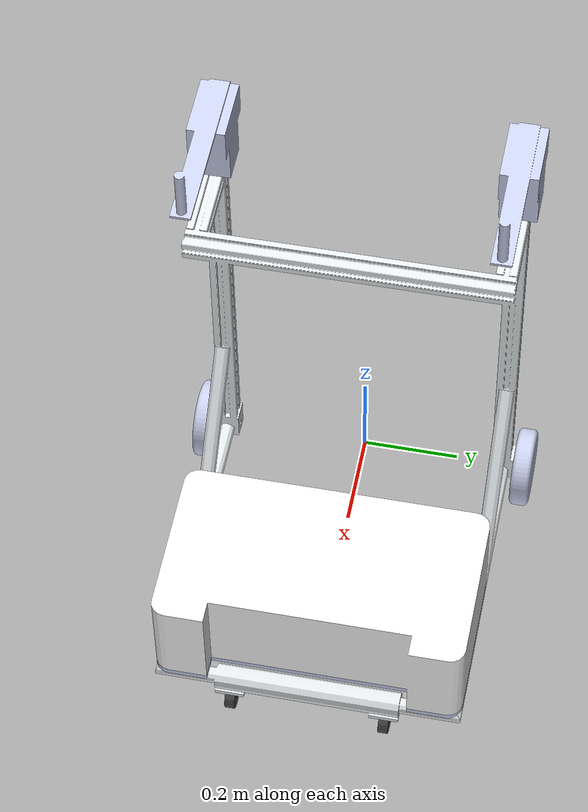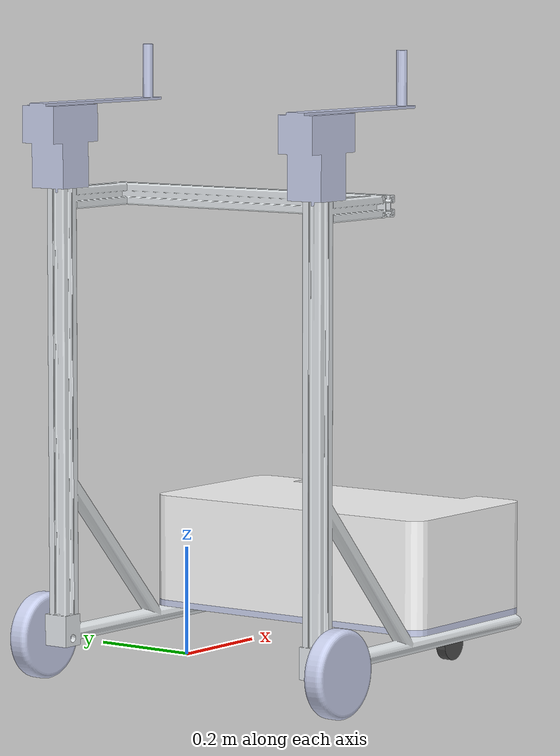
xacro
<?xml version="1.0"?>
<robot name="bmt_walker" xmlns:xacro="http://ros.org/wiki/xacro">

  <!--Properties-->
  <!--All units in m-kg-s-radians unit system -->
  <xacro:property name="M_PI" value="3.1415926535897931" />
  <xacro:property name="M_PI_2" value="1.570796327" />

  <!-- Robot's Base Size -->
  <xacro:property name="base_x_size" value="0.74" />
  <xacro:property name="base_y_size" value="0.66" />
	<xacro:property name="base_z_size" value="1.15" />

  <!-- Wheel Properties -->
  <xacro:property name="wheel_vertical_offset" value="0.015" />
  <xacro:property name="wheel_length" value="0.045" />
	<xacro:property name="wheel_radius" value="0.0825" />

	<!-- Caster wheel properties-->
	<xacro:property name="caster_length" value="0.020" />
	<xacro:property name="caster_radius" value="0.032" />
	<xacro:property name="caster_z_offset" value="-0.05325" />
	<xacro:property name="caster_y_offset" value="0.159" />
	<xacro:property name="caster_x_offset" value="0.6315" />
	<xacro:property name="caster_mass" value="0.5"/>

	<!-- base_footprint is a fictitious link(frame) that is on the ground right below base_link origin -->
	<link name="base_footprint" >
		<inertial>
			<mass value="0.0001" />
     	<origin xyz="0 0 0" />
     	<inertia ixx="0.0001" ixy="0.0" ixz="0.0" iyy="0.0001" iyz="0.0" izz="0.0001" />
    </inertial>
  </link>
	<joint name="base_footprint_joint" type="fixed">
		<origin xyz="0 0 ${wheel_vertical_offset - wheel_radius}" rpy="0 0 0" />
		<parent link="base_link" />
		<child link="base_footprint" />
	</joint>
	<gazebo reference="base_footprint">
    <turnGravityOff>false</turnGravityOff>
	</gazebo>

	<!-- Base link is the center of rotation of the robot -->
	<link name="base_link">
		<inertial>
      <origin xyz="0 0 0" rpy="0 0 0" />
      <mass value="23.3" />
      <inertia ixx="0.807" ixy="0" ixz="0" iyy="0.807" iyz="0" izz="0.807" />
    </inertial>
    <visual>
      <origin xyz="0 0 0" rpy="0 0 ${M_PI}" />
      <geometry>
        <mesh filename="package://bmt_sw_description/meshes/base_link_nowheels.STL" />
      </geometry>
      <material name="">
        <color rgba="0.898039215686275 0.917647058823529 0.929411764705882 1" />
      </material>
    </visual>
    <collision>
      <!--origin xyz="${base_x_size/2} 0 ${base_z_size/4}" rpy="0 0 0" /-->
	  <origin xyz="0 0 0" rpy="0 0 ${M_PI}" />
      <geometry>
        <mesh filename="package://bmt_sw_description/meshes/base_link_nowheels.STL" />
      </geometry>
    </collision>
  </link>
	<gazebo reference="base_link">
    <material>Gazebo/White</material>
    <turnGravityOff>false</turnGravityOff>
	</gazebo>

  <!--Left wheel-->
  <link name="left_wheel">
    <inertial>
      <origin xyz="0 0 0" rpy="0 0 0" />
      <mass value="2.4" />
      <inertia ixx="0.00952875" ixy="0" ixz="0" iyy="0.00952875" iyz="0" izz="0.0081675" />
    </inertial>
    <visual>
      <origin xyz="0 0 0" rpy="-${M_PI_2} ${M_PI_2} 0" />
      <geometry>
        <mesh filename="package://bmt_sw_description/meshes/left_wheel.STL" />
      </geometry>
      <material name="">
        <color rgba="0.792156862745098 0.819607843137255 0.933333333333333 1" />
      </material>
    </visual>
    <collision>
      <origin xyz="0 ${wheel_length+0.01} 0" rpy="-${M_PI_2} ${M_PI_2} 0" />
      <geometry>
        <!--mesh filename="package://bmt_sw_description/meshes/left_wheel.STL" /-->
				<cylinder length="${wheel_length}" radius="${wheel_radius}"/>
      </geometry>
    </collision>
  </link>
  <gazebo reference="left_wheel">
		<mu1 value="1.0"/>
		<mu2 value="1.0"/>
		<kp value="10000000.0" />
		<kd value="1.0" />
		<fdir1 value="1 0 0"/>
		<material>Gazebo/Grey</material>
		<turnGravityOff>false</turnGravityOff>
	</gazebo>
  <joint name="left_wheel_joint" type="continuous">
    <parent link="base_link" />
    <child link="left_wheel" />
    <origin xyz="0 0.285 0" rpy="0 0 0" />
    <axis xyz="0 1 0" />
    <limit effort="100" velocity="100"/>
    <joint_properties damping="0.0" friction="0.5"/>
  </joint>
	<transmission name="left_wheel_trans" type="SimpleTransmission">
			<type>transmission_interface/SimpleTransmission</type>
			<joint name="left_wheel_joint"/>
			<actuator name="left_wheel_motor">
				<hardwareInterface>EffortJointInterface</hardwareInterface>
				<mechanicalReduction>1</mechanicalReduction>
			</actuator>
	</transmission>

	<!--Right wheel-->
  <link name="right_wheel">
    <inertial>
      <origin xyz="0 0 0" rpy="0 0 0" />
      <mass value="2.4" />
      <inertia ixx="0.00952875" ixy="0" ixz="0" iyy="0.00952875" iyz="0" izz="0.0081675" />
    </inertial>
    <visual>
      <origin xyz="0 0 0" rpy="-${M_PI_2} ${M_PI_2} ${M_PI}" />
      <geometry>
        <mesh filename="package://bmt_sw_description/meshes/left_wheel.STL" />
      </geometry>
      <material name="">
        <color rgba="0.792156862745098 0.819607843137255 0.933333333333333 1" />
      </material>
    </visual>
    <collision>
      <origin xyz="0 -${wheel_length+0.01} 0" rpy="-${M_PI_2} ${M_PI_2} ${M_PI}" />
      <geometry>
        <!--mesh filename="package://bmt_sw_description/meshes/left_wheel.STL" /-->
				<cylinder length="${wheel_length}" radius="${wheel_radius}"/>
      </geometry>
    </collision>
  </link>
  <gazebo reference="right_wheel">
		<mu1 value="1.0"/>
		<mu2 value="1.0"/>
		<kp value="10000000.0" />
		<kd value="1.0" />
		<fdir1 value="1 0 0"/>
		<material>Gazebo/Grey</material>
		<turnGravityOff>false</turnGravityOff>
	</gazebo>
  <joint name="right_wheel_joint" type="continuous">
    <parent link="base_link" />
    <child link="right_wheel" />
    <origin xyz="0 -0.285 0" rpy="0 0 0" />
    <axis xyz="0 1 0" />
    <limit effort="100" velocity="100"/>
    <joint_properties damping="0.0" friction="0.5"/>
  </joint>
	<transmission name="right_wheel_trans" type="SimpleTransmission">
			<type>transmission_interface/SimpleTransmission</type>
			<joint name="right_wheel_joint"/>
			<actuator name="right_wheel_motor">
				<hardwareInterface>EffortJointInterface</hardwareInterface>
				<mechanicalReduction>1</mechanicalReduction>
			</actuator>
	</transmission>

	<!--Left caster wheel-->
	<link name="left_caster">
		<inertial>
		  	<mass value="${caster_mass}" />
		    <origin xyz="0 0 0" />
		    <inertia ixx="0.001" ixy="0.0" ixz="0.0" iyy="0.001" iyz="0.0" izz="0.001" />
    	</inertial>
		<visual>
			<origin xyz="0 0 0" rpy="${M_PI_2} 0 0" />
      <geometry>
				<cylinder length="${caster_length}" radius="${caster_radius}" />
      </geometry>
      <material name="DarkGray" />
    </visual>
    <collision>
			<origin xyz="0 0 0" rpy="${M_PI_2} 0 0" />
    	<geometry>
				<cylinder length="${caster_length}" radius="${caster_radius}" />
      </geometry>
    </collision>
	</link>
	<joint name="left_caster_joint" type="fixed">
		<parent link="base_link"/>
		<child link="left_caster"/>
		<origin xyz="${caster_x_offset} ${caster_y_offset} ${caster_z_offset}" rpy="0 0 0"/>
	</joint>
	<gazebo reference="left_caster">
		<turnGravityOff>false</turnGravityOff>
	</gazebo>

	<!-- Right caster wheel-->
	<link name="right_caster">
		<inertial>
    	<mass value="${caster_mass}" />
      <origin xyz="0 0 0" />
      <inertia ixx="0.001" ixy="0.0" ixz="0.0" iyy="0.001" iyz="0.0" izz="0.001" />
    </inertial>
		<visual>
      <origin xyz="0 0 0" rpy="${M_PI_2} 0 0" />
      <geometry>
				<cylinder length="${caster_length}" radius="${caster_radius}" />
      </geometry>
      <material name="DarkGray" />
    </visual>
    <collision>
			<origin xyz="0 0 0" rpy="${M_PI_2} 0 0" />
    	<geometry>
				<cylinder length="${caster_length}" radius="${caster_radius}" />
      </geometry>
    </collision>
	</link>
	<joint name="right_caster_joint" type="fixed">
		<parent link="base_link"/>
		<child link="right_caster"/>
		<origin xyz="${caster_x_offset} -${caster_y_offset} ${caster_z_offset}" rpy="0 0 0"/>
	</joint>
	<gazebo reference="right_caster">
		<turnGravityOff>false</turnGravityOff>
	</gazebo>

	<!-- Left force link-->
  <link name="left_force">
    <inertial>
      <origin xyz="0 0 0" rpy="0 0 0" />
      <mass value="1.26336608136047" />
      <inertia
        ixx="0.00222782751505132"
        ixy="0"
        ixz="0"
        iyy="0.00235615491759392"
        iyz="0"
        izz="0.0001283274025426" />
    </inertial>
    <visual>
      <origin xyz="0 0 0.0381" rpy="0 0 ${M_PI}" />
      <geometry>
        <mesh filename="package://bmt_sw_description/meshes/left_force.STL" />
      </geometry>
      <material name="">
        <color rgba="0.792156862745098 0.819607843137255 0.933333333333333 1" />
      </material>
    </visual>
    <collision>
      <origin xyz="0 0 0.0381" rpy="0 0 ${M_PI}" />
      <geometry>
        <mesh filename="package://bmt_sw_description/meshes/left_force.STL" />
      </geometry>
    </collision>
  </link>
  <joint name="left_force_base" type="fixed">
    <origin xyz="-0.00175 0.29725 0.9025" rpy="0 0 0" />
    <parent link="base_link" />
    <child link="left_force" />
    <!--axis xyz="0 0 0" /-->
  </joint>

	<!--Right force link-->
  <link name="right_force">
    <inertial>
      <origin xyz="0 0 0" rpy="0 0 0" />
      <mass value="1.26336608136047" />
      <inertia
        ixx="0.00222782751505132"
        ixy="0"
        ixz="0"
        iyy="0.00235615491759392"
        iyz="0"
        izz="0.0001283274025426" />
    </inertial>
    <visual>
      <origin xyz="0 0 0.0381" rpy="0 0 ${M_PI}" />
      <geometry>
        <mesh filename="package://bmt_sw_description/meshes/left_force.STL" />
      </geometry>
      <material name="">
        <color rgba="0.792156862745098 0.819607843137255 0.933333333333333 1" />
      </material>
    </visual>
    <collision>
      <origin xyz="0 0 0.0381" rpy="0 0 ${M_PI}" />
      <geometry>
        <mesh filename="package://bmt_sw_description/meshes/left_force.STL" />
      </geometry>
    </collision>
  </link>
  <joint name="right_force_base" type="fixed">
    <origin xyz="-0.00175 -0.29725 0.9025" rpy="0 0 0" />
    <parent link="base_link" />
    <child link="right_force" />
    <!--axis xyz="0 0 0" /-->
  </joint>

	<!--Deck0 link-->
  <link name="deck_0">
    <inertial>
      <origin xyz="0 0 0" rpy="0 0 0" />
      <mass value="1.4" />
      <inertia ixx="0" ixy="0" ixz="0" iyy="0" iyz="0" izz="0" />
    </inertial>
    <visual>
      <origin xyz="0 0 0.016" rpy="${M_PI_2} 0 ${M_PI_2}" />
      <geometry>
        <mesh filename="package://bmt_sw_description/meshes/deck_0.STL" />
      </geometry>
      <material name="">
        <color rgba="0.792156862745098 0.819607843137255 0.933333333333333 1" />
      </material>
    </visual>
    <collision>
      <origin xyz="0 0 0" rpy="${M_PI_2} 0 ${M_PI_2}" />
      <geometry>
        <mesh filename="package://bmt_sw_description/meshes/deck_0.STL" />
      </geometry>
    </collision>
  </link>
  <joint name="deck_0_base" type="fixed">
    <origin xyz="0.47516 0 0.027" rpy="0 0 0" />
    <parent link="base_link" />
    <child link="deck_0" />
    <axis xyz="0 0 0" />
  </joint>

	<!--Deck1 link-->
  <link name="deck_1">
    <inertial>
      <origin xyz="0 0 0" rpy="0 0 0" />
      <mass value="11.57148011871309" />
      <inertia ixx="0" ixy="0" ixz="0" iyy="0" iyz="0" izz="0" />
    </inertial>
    <visual>
      <origin xyz="0 0 -0.207" rpy="${M_PI} 0 -${M_PI_2}" />
      <geometry>
        <mesh filename="package://bmt_sw_description/meshes/deck_1.STL" />
      </geometry>
      <material name="">
        <color rgba="1 1 1 1" />
      </material>
    </visual>
    <collision>
      <origin xyz="0 0 -0.207" rpy="${M_PI} 0 ${M_PI_2}" />
      <geometry>
        <mesh filename="package://bmt_sw_description/meshes/deck_1.STL" />
      </geometry>
    </collision>
  </link>
  <joint name="deck_1_base" type="fixed">
    <origin xyz="0 0 0.213" rpy="0 0 0" />
    <parent link="deck_0" />
    <child link="deck_1" />
    <axis xyz="0 0 0" />
  </joint>

	<!-- Differential drive controller  -->
  <gazebo>
    <plugin name="differential_drive_controller" filename="libgazebo_ros_diff_drive.so">
      <legacyMode>true</legacyMode>
      <rosDebugLevel>Debug</rosDebugLevel>
      <publishWheelTF>true</publishWheelTF>
      <robotNamespace>/</robotNamespace>
      <publishTf>1</publishTf>
      <publishWheelJointState>false</publishWheelJointState>
      <publishOdomTF>true</publishOdomTF>
      <alwaysOn>true</alwaysOn>
      <updateRate>100.0</updateRate>
      <leftJoint>left_wheel_joint</leftJoint>
	  <rightJoint>right_wheel_joint</rightJoint>
      <wheelSeparation>${base_y_size}</wheelSeparation>
      <wheelDiameter>${2*wheel_radius}</wheelDiameter>
      <broadcastTF>1</broadcastTF>
      <wheelTorque>30</wheelTorque>
      <wheelAcceleration>1.8</wheelAcceleration>
      <commandTopic>cmd_vel</commandTopic>
      <odometryFrame>odom</odometryFrame>
      <odometryTopic>odom</odometryTopic>
      <robotBaseFrame>base_footprint</robotBaseFrame>
    </plugin>
	</gazebo>
</robot>
